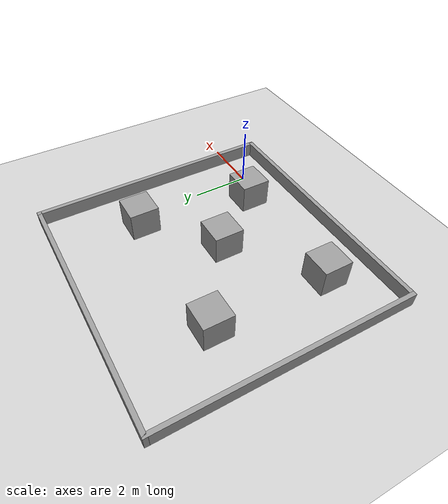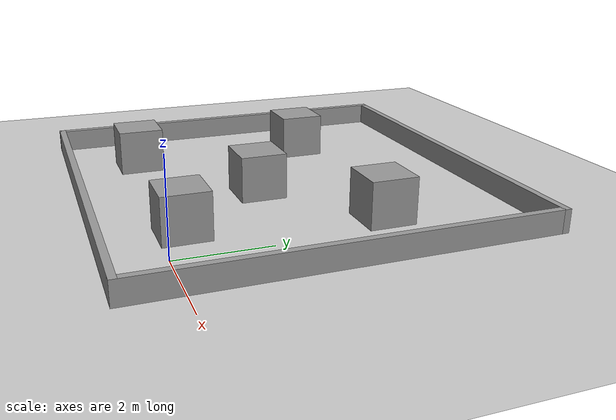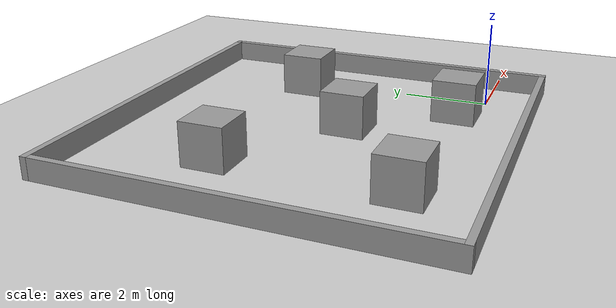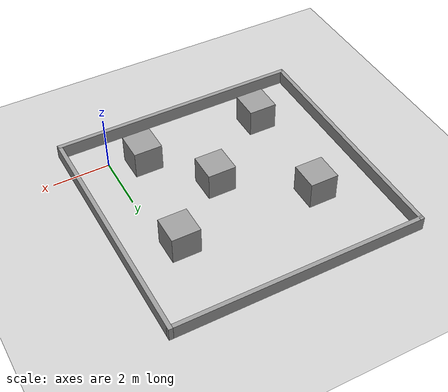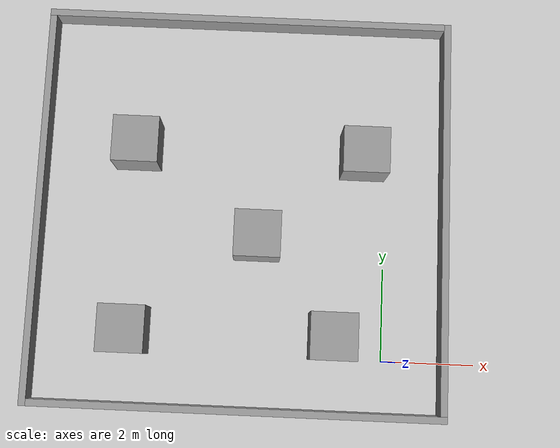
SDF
<sdf version="1.6">
 <world name="default">
  <light name="sun" type="directional">
   <pose>0 0 10 0 -0 0</pose>
   <diffuse>0.8 0.8 0.8 1</diffuse>
   <specular>0.2 0.2 0.2 1</specular>
   <attenuation>
    <range>1000</range>
    <constant>0.9</constant>
    <linear>0.01</linear>
    <quadratic>0.001</quadratic>
   </attenuation>
   <direction>-0.5 0.1 -0.9</direction>
  </light>
  <model name="ground_plane">
   <static>1</static>
   <link name="link">
    <collision name="collision">
     <geometry><plane><normal>0 0 1</normal><size>100 100</size></plane></geometry>
     <surface><friction><ode><mu>100</mu><mu2>50</mu2></ode></friction></surface>
    </collision>
    <visual name="visual">
     <cast_shadows>0</cast_shadows>
     <geometry><plane><normal>0 0 1</normal><size>100 100</size></plane></geometry>
     <material>
      <script><uri>file://media/materials/scripts/gazebo.material</uri><name>Gazebo/Grey</name></script>
     </material>
    </visual>
   </link>
  </model>
  <gravity>0 0 -9.8</gravity>
  <magnetic_field>6e-06 2.3e-05 -4.2e-05</magnetic_field>
  <atmosphere type="adiabatic"/>
  <physics name="default_physics" default="0" type="ode">
   <max_step_size>0.001</max_step_size>
   <real_time_factor>1</real_time_factor>
   <real_time_update_rate>1000</real_time_update_rate>
  </physics>
  <scene><ambient>0.4 0.4 0.4 1</ambient><background>0.7 0.7 0.7 1</background><shadows>1</shadows></scene>
  <audio><device>default</device></audio>
  <spherical_coordinates>
   <surface_model>EARTH_WGS84</surface_model>
   <latitude_deg>0</latitude_deg>
   <longitude_deg>0</longitude_deg>
   <elevation>0</elevation>
   <heading_deg>0</heading_deg>
  </spherical_coordinates>
  <model name="33_room">
   <pose>-3.14392 3.14368 0 0 -0 0</pose>
   <link name="Wall_2">
    <collision name="Wall_2_Collision">
     <geometry><box><size>9 0.15 0.5</size></box></geometry>
     <pose>0 0 0.25 0 -0 0</pose>
    </collision>
    <visual name="Wall_2_Visual">
     <pose>0 0 0.25 0 -0 0</pose>
     <geometry><box><size>9 0.15 0.5</size></box></geometry>
     <material>
      <script><uri>file://media/materials/scripts/gazebo.material</uri><name>Gazebo/Grey</name></script>
      <ambient>1 1 1 1</ambient>
     </material>
     <meta><layer>0</layer></meta>
    </visual>
    <pose>0 -4.3 0 0 -0 0</pose>
   </link>
   <link name="Wall_3">
    <collision name="Wall_3_Collision">
     <geometry><box><size>8.75 0.15 0.5</size></box></geometry>
     <pose>0 0 0.25 0 -0 0</pose>
    </collision>
    <visual name="Wall_3_Visual">
     <pose>0 0 0.25 0 -0 0</pose>
     <geometry><box><size>8.75 0.15 0.5</size></box></geometry>
     <material>
      <script><uri>file://media/materials/scripts/gazebo.material</uri><name>Gazebo/Grey</name></script>
      <ambient>1 1 1 1</ambient>
     </material>
     <meta><layer>0</layer></meta>
    </visual>
    <pose>4.425 0 0 0 -0 1.5708</pose>
   </link>
   <link name="Wall_4">
    <collision name="Wall_4_Collision">
     <geometry><box><size>9 0.15 0.5</size></box></geometry>
     <pose>0 0 0.25 0 -0 0</pose>
    </collision>
    <visual name="Wall_4_Visual">
     <pose>0 0 0.25 0 -0 0</pose>
     <geometry><box><size>9 0.15 0.5</size></box></geometry>
     <material>
      <script><uri>file://media/materials/scripts/gazebo.material</uri><name>Gazebo/Grey</name></script>
      <ambient>1 1 1 1</ambient>
     </material>
     <meta><layer>0</layer></meta>
    </visual>
    <pose>0 4.3 0 0 -0 3.14159</pose>
   </link>
   <link name="Wall_6">
    <collision name="Wall_6_Collision">
     <geometry><box><size>8.75 0.15 0.5</size></box></geometry>
     <pose>0 0 0.25 0 -0 0</pose>
    </collision>
    <visual name="Wall_6_Visual">
     <pose>0 0 0.25 0 -0 0</pose>
     <geometry><box><size>8.75 0.15 0.5</size></box></geometry>
     <material>
      <script><uri>file://media/materials/scripts/gazebo.material</uri><name>Gazebo/Grey</name></script>
      <ambient>1 1 1 1</ambient>
     </material>
     <meta><layer>0</layer></meta>
    </visual>
    <pose>-4.425 0 0 0 -0 -1.5708</pose>
   </link>
   <static>1</static>
  </model>
  <model name="unit_box">
   <pose>-2.78202 2.56508 0.499995 -1e-05 -0 -0</pose>
   <link name="link">
    <inertial>
     <mass>1</mass>
     <inertia>
      <ixx>0.166667</ixx>
      <ixy>0</ixy>
      <ixz>0</ixz>
      <iyy>0.166667</iyy>
      <iyz>0</iyz>
      <izz>0.166667</izz>
     </inertia>
    </inertial>
    <collision name="collision"><geometry><box><size>1 1 1</size></box></geometry></collision>
    <visual name="visual">
     <geometry><box><size>1 1 1</size></box></geometry>
     <material>
      <script><name>Gazebo/Grey</name><uri>file://media/materials/scripts/gazebo.material</uri></script>
     </material>
    </visual>
   </link>
  </model>
  <model name="unit_box_0">
   <pose>-5.54049 0.457665 0.499995 0 1e-05 0</pose>
   <link name="link">
    <inertial>
     <mass>1</mass>
     <inertia>
      <ixx>0.166667</ixx>
      <ixy>0</ixy>
      <ixz>0</ixz>
      <iyy>0.166667</iyy>
      <iyz>0</iyz>
      <izz>0.166667</izz>
     </inertia>
    </inertial>
    <collision name="collision"><geometry><box><size>1 1 1</size></box></geometry></collision>
    <visual name="visual">
     <geometry><box><size>1 1 1</size></box></geometry>
     <material>
      <script><name>Gazebo/Grey</name><uri>file://media/materials/scripts/gazebo.material</uri></script>
     </material>
    </visual>
   </link>
  </model>
  <model name="unit_box_1">
   <pose>-5.48803 4.49693 0.499995 -1e-05 -0 -0</pose>
   <link name="link">
    <inertial>
     <mass>1</mass>
     <inertia>
      <ixx>0.166667</ixx>
      <ixy>0</ixy>
      <ixz>0</ixz>
      <iyy>0.166667</iyy>
      <iyz>0</iyz>
      <izz>0.166667</izz>
     </inertia>
    </inertial>
    <collision name="collision"><geometry><box><size>1 1 1</size></box></geometry></collision>
    <visual name="visual">
     <geometry><box><size>1 1 1</size></box></geometry>
     <material>
      <script><name>Gazebo/Grey</name><uri>file://media/materials/scripts/gazebo.material</uri></script>
     </material>
    </visual>
   </link>
  </model>
  <model name="unit_box_2">
   <pose>-1.09844 0.482376 0.499995 0 1e-05 0</pose>
   <link name="link">
    <inertial>
     <mass>1</mass>
     <inertia>
      <ixx>0.166667</ixx>
      <ixy>0</ixy>
      <ixz>0</ixz>
      <iyy>0.166667</iyy>
      <iyz>0</iyz>
      <izz>0.166667</izz>
     </inertia>
    </inertial>
    <collision name="collision"><geometry><box><size>1 1 1</size></box></geometry></collision>
    <visual name="visual">
     <geometry><box><size>1 1 1</size></box></geometry>
     <material>
      <script><name>Gazebo/Grey</name><uri>file://media/materials/scripts/gazebo.material</uri></script>
     </material>
    </visual>
   </link>
  </model>
  <model name="unit_box_3">
   <pose>-0.516107 4.46992 0.499995 -1e-05 -0 0</pose>
   <link name="link">
    <inertial>
     <mass>1</mass>
     <inertia>
      <ixx>0.166667</ixx>
      <ixy>0</ixy>
      <ixz>0</ixz>
      <iyy>0.166667</iyy>
      <iyz>0</iyz>
      <izz>0.166667</izz>
     </inertia>
    </inertial>
    <collision name="collision"><geometry><box><size>1 1 1</size></box></geometry></collision>
    <visual name="visual">
     <geometry><box><size>1 1 1</size></box></geometry>
     <material>
      <script><name>Gazebo/Grey</name><uri>file://media/materials/scripts/gazebo.material</uri></script>
     </material>
    </visual>
   </link>
  </model>
 </world>
</sdf>
